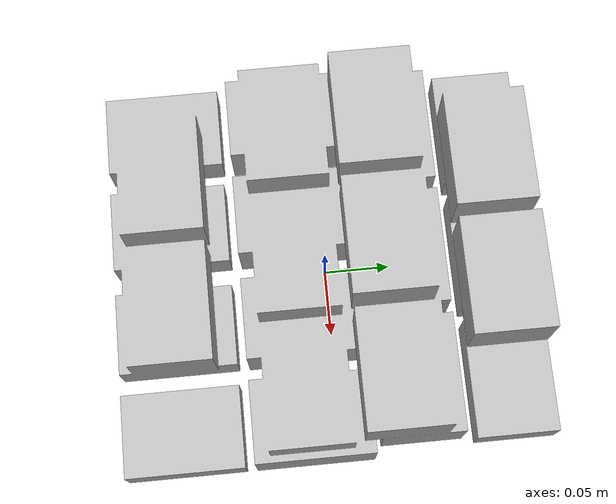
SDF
<?xml version="1.0" ?>
<sdf version="1.6">
  <model name="aws_robomaker_retail_BookD_01">
    <link name="link">
      <inertial>
        <mass>0.5</mass>
      </inertial>
      <collision name="collision">
        <geometry>
          <mesh>
            <uri>file://models/aws_simulation/aws_robomaker_retail_BookD_01/meshes/aws_BookD_01_collision.DAE</uri>
            <scale>0.4 0.4 0.4</scale>
          </mesh>
        </geometry>
      </collision>
      <visual name="visual">
	    <geometry>
          <mesh>
            <uri>file://models/aws_simulation/aws_robomaker_retail_BookD_01/meshes/aws_BookD_01_visual.DAE</uri>
            <scale>0.4 0.4 0.4</scale>
          </mesh>
        </geometry>
        <meta>
          <layer>1</layer>
        </meta>
      </visual>
    </link>
	<static>1</static>
  </model>
</sdf>
